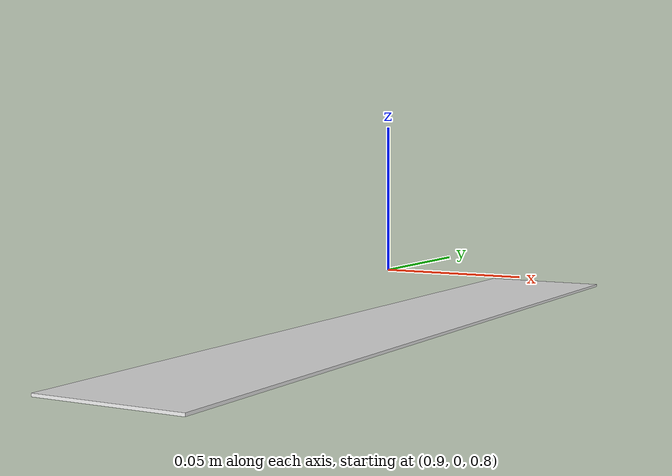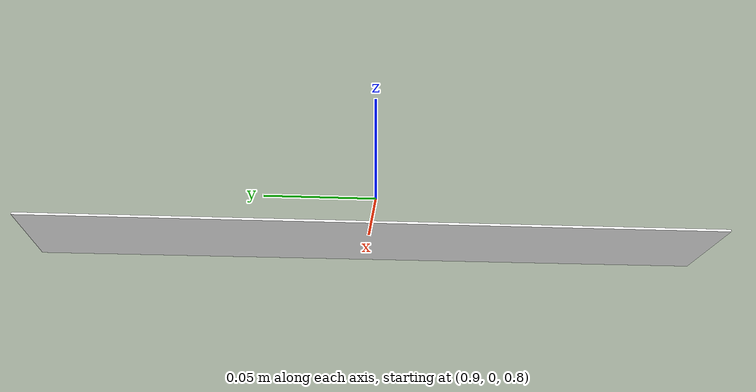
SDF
<?xml version='1.0'?>
<sdf version='1.6'>
  <model name="end_box">
    <link name="end_box">
      <pose>0.9 0 0.78 0 0 0</pose>
      <inertial>
        <mass>10000</mass>
      </inertial>
      <collision name="end_box_collision">
        <geometry>
          <box>
              <size>.05 .3 .001</size>
            </box>
        </geometry>
			<surface>
                <friction>
                  <ode>
                    <mu>1000</mu>
                    <mu2>1000</mu2>
                  </ode>
                </friction>
              </surface>
      </collision>
      <visual name="end_box_visual">
        <geometry>
          <box>
              <size>.05 .3 .001</size>
            </box>
        </geometry>
		<material>
		    <script>
		      <uri>file://media/materials/scripts/gazebo.material</uri>
		      <name>Gazebo/White</name>
		    </script>
      	</material>
      </visual>
    </link>
  </model>
</sdf>
